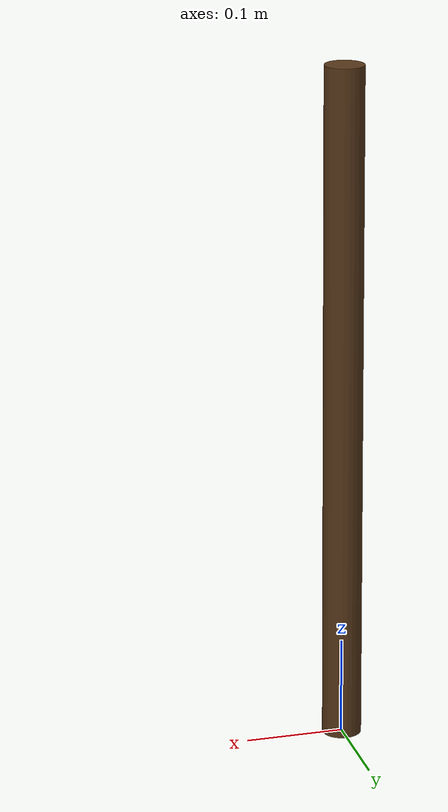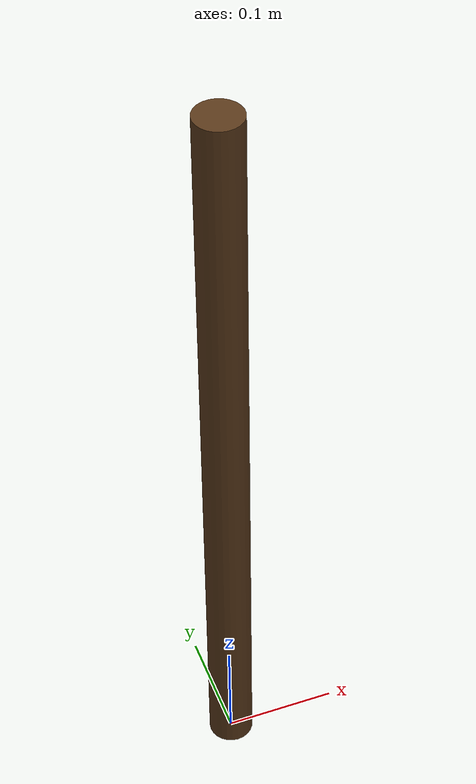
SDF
<?xml version="1.0" ?>
<sdf version="1.6">
  <model name="plant_stem">
    <static>true</static>
    <link name="stem_link">
      <pose>0 0 0.35 0 0 0</pose>
      <visual name="stem_visual">
        <geometry>
          <cylinder>
            <radius>0.02</radius>
            <length>0.70</length>
          </cylinder>
        </geometry>
        <material>
          <ambient>0.35 0.22 0.10 1</ambient>
          <diffuse>0.35 0.22 0.10 1</diffuse>
        </material>
      </visual>
      <collision name="stem_collision">
        <geometry>
          <cylinder>
            <radius>0.02</radius>
            <length>0.70</length>
          </cylinder>
        </geometry>
      </collision>
    </link>
  </model>
</sdf>
